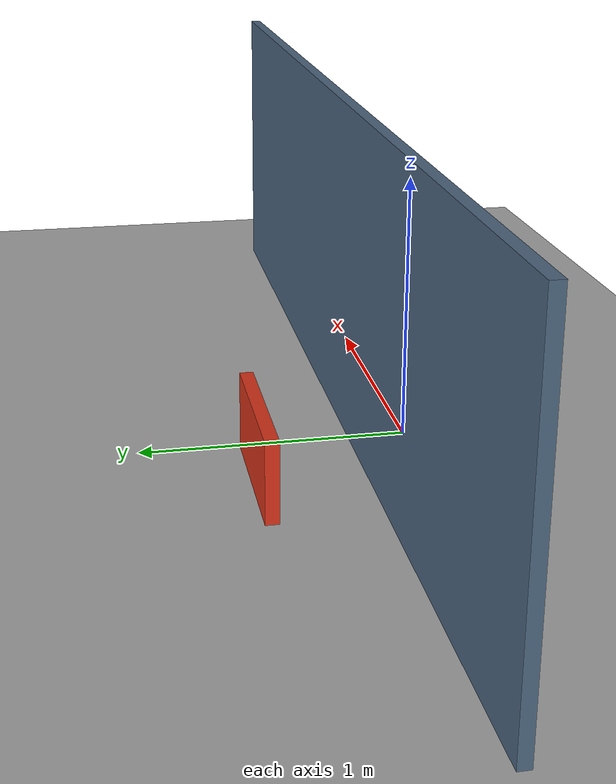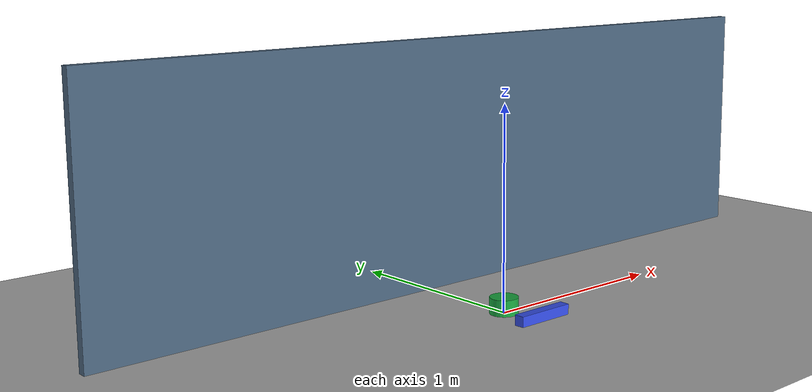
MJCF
<mujoco model="spatial-history-engineering-v2-flat-pusher">
  <compiler angle="radian"/>
  <option timestep="0.002" gravity="0 0 -9.81" integrator="implicitfast"
          solver="Newton" iterations="100" tolerance="1e-10">
    <flag autoreset="disable"/>
  </option>
  <statistic extent="4" center="0 0 0"/>
  <visual>
    <global offwidth="64" offheight="64"/>
    <map znear="0.01" zfar="5"/>
    <quality offsamples="0"/>
    <headlight ambient="0.4 0.4 0.4" diffuse="0.6 0.6 0.6" specular="0 0 0"/>
  </visual>
  <default>
    <geom friction="0.25 0.005 0.0001" solref="0.01 1" solimp="0.95 0.99 0.001"/>
  </default>
  <worldbody>
    <geom name="floor" type="plane" size="3 3 0.1" rgba="0.65 0.65 0.65 1"/>
    <geom name="screen" type="box" pos="0 0.25 0.71" size="2 0.02 0.59"
          rgba="0.3 0.4 0.5 1"/>
    <!-- Only this geom's x position is mirrored between the two worlds. -->
    <geom name="wall" type="box" pos="-0.31 0.60 0.15" size="0.29 0.025 0.15"
          rgba="0.85 0.2 0.1 1"/>
    <body name="object" pos="0 0 0.04">
      <freejoint name="object_free"/>
      <geom name="object" type="cylinder" size="0.07 0.04" mass="0.15"
            rgba="0.1 0.65 0.25 1"/>
    </body>
    <body name="pusher" pos="0 -0.25 0.05">
      <joint name="slide_x" type="slide" axis="1 0 0"/>
      <joint name="slide_y" type="slide" axis="0 1 0"/>
      <geom name="pusher" type="box" size="0.15 0.025 0.025" mass="0.5" rgba="0.2 0.3 0.9 1"/>
    </body>
    <body name="camera_rig" mocap="true" pos="0 -1.6 1.4">
      <camera name="ego" fovy="65"/>
    </body>
  </worldbody>
  <actuator>
    <velocity name="vx" joint="slide_x" kv="100" ctrllimited="true" ctrlrange="-0.5 0.5"
              forcelimited="true" forcerange="-20 20"/>
    <velocity name="vy" joint="slide_y" kv="100" ctrllimited="true" ctrlrange="-0.5 0.5"
              forcelimited="true" forcerange="-20 20"/>
  </actuator>
</mujoco>
